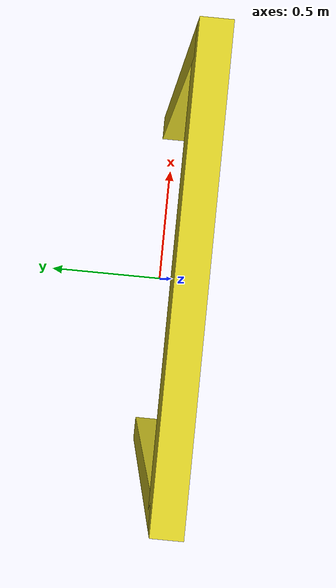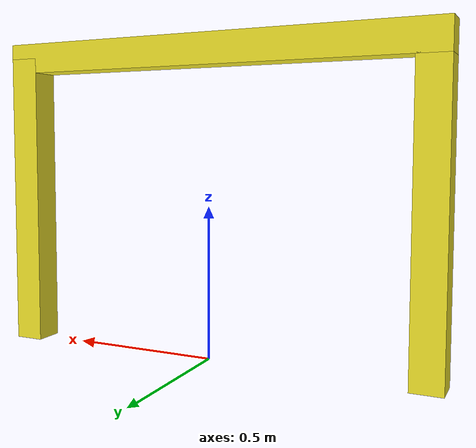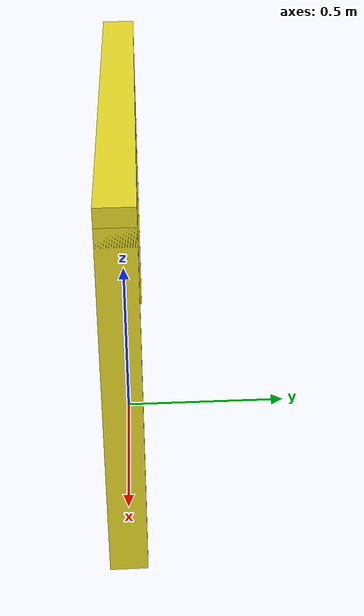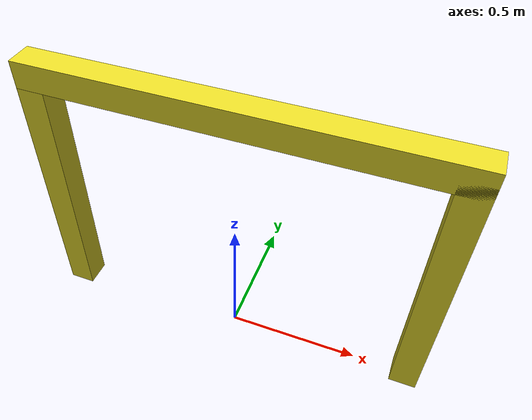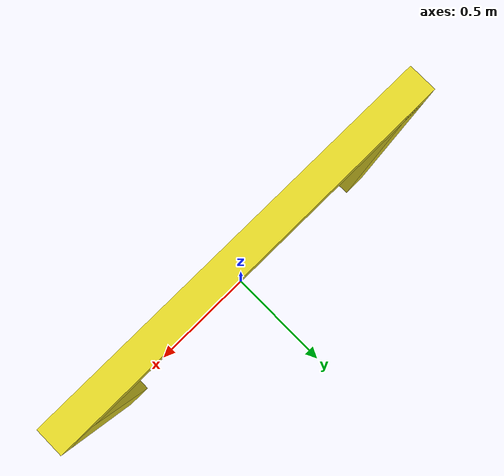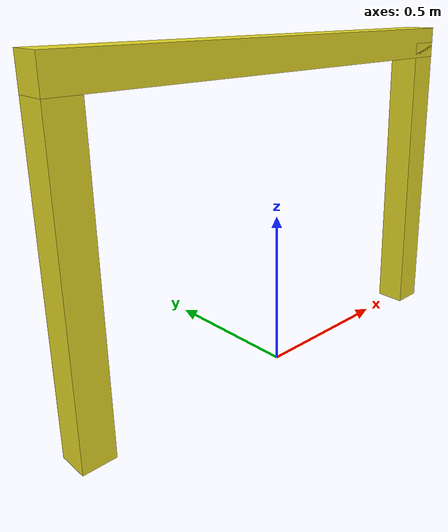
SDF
<?xml version="1.0" ?>
<sdf version="1.6">
  <model name="yellow_gate">
    <static>true</static>
    <link name="link">
      <!-- Left Vertical Bar -->
      <visual name="left_bar">
        <pose>-0.7 0 0.5 0 0 0</pose>
        <geometry>
          <box>
            <size>0.1 0.1 1</size>
          </box>
        </geometry>
        <material>
          <script>
            <uri>file://media/materials/scripts/gazebo.material</uri>
            <name>Gazebo/Yellow</name>
          </script>
        </material>
      </visual>
      <collision name="left_collision">
        <pose>-0.7 0 0.5 0 0 0</pose>
        <geometry>
          <box>
            <size>0.1 0.1 1</size>
          </box>
        </geometry>
      </collision>
      <!-- Right Vertical Bar -->
      <visual name="right_bar">
        <pose>0.7 0 0.5 0 0 0</pose>
        <geometry>
          <box>
            <size>0.1 0.1 1</size>
          </box>
        </geometry>
        <material>
          <script>
            <uri>file://media/materials/scripts/gazebo.material</uri>
            <name>Gazebo/Yellow</name>
          </script>
        </material>
      </visual>
      <collision name="right_collision">
        <pose>0.7 0 0.5 0 0 0</pose>
        <geometry>
          <box>
            <size>0.1 0.1 1</size>
          </box>
        </geometry>
      </collision>
      <!-- Top Horizontal Bar -->
      <visual name="top_bar">
        <pose>0 0 1 0 0 0</pose>
        <geometry>
          <box>
            <size>1.5 0.1 0.1</size>
          </box>
        </geometry>
        <material>
          <script>
            <uri>file://media/materials/scripts/gazebo.material</uri>
            <name>Gazebo/Yellow</name>
          </script>
        </material>
      </visual>
      <collision name="top_collision">
        <pose>0 0 1 0 0 0</pose>
        <geometry>
          <box>
            <size>1.5 0.1 0.1</size>
          </box>
        </geometry>
      </collision>
    </link>
  </model>
</sdf>
